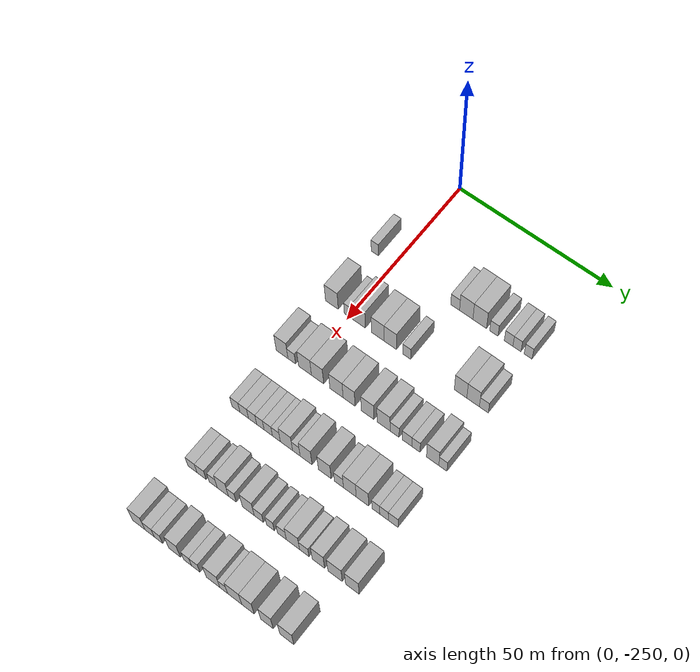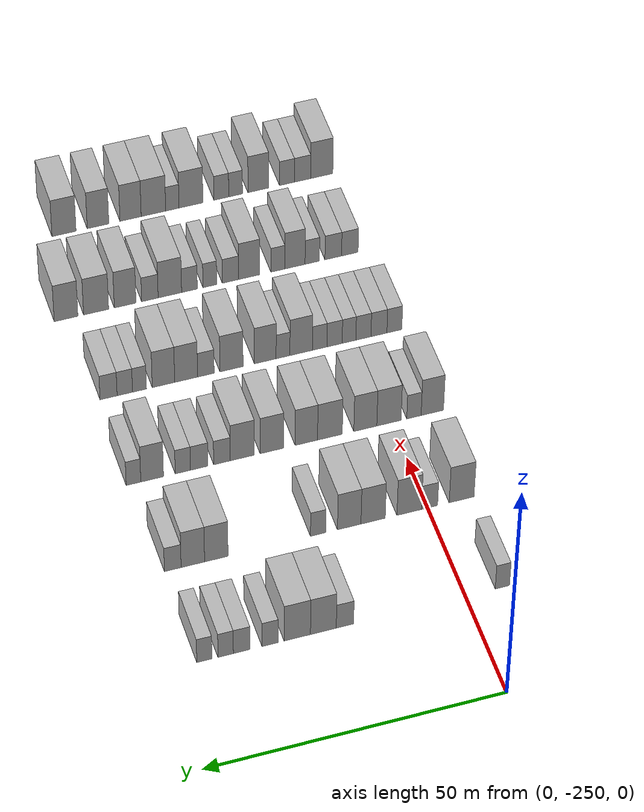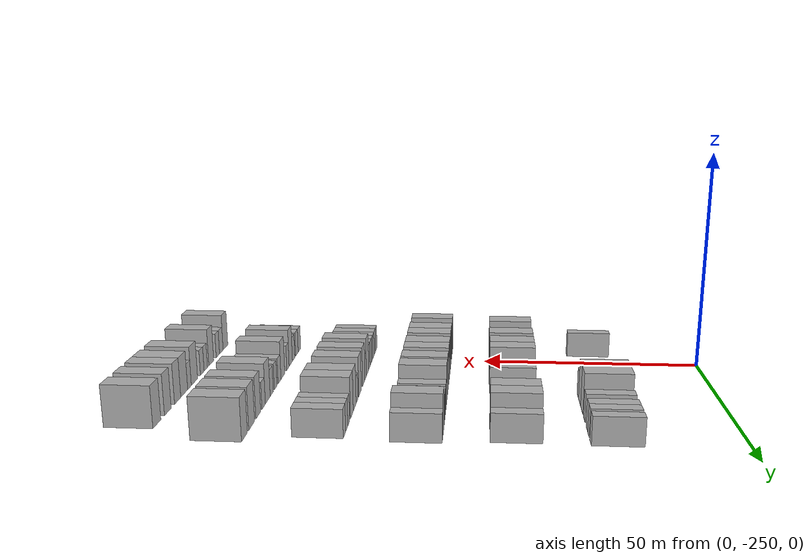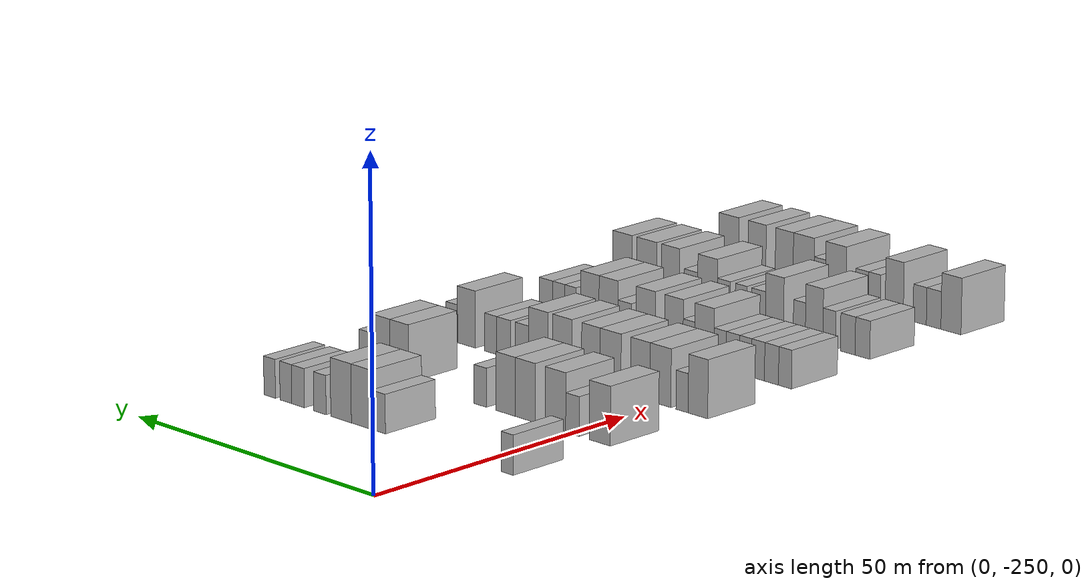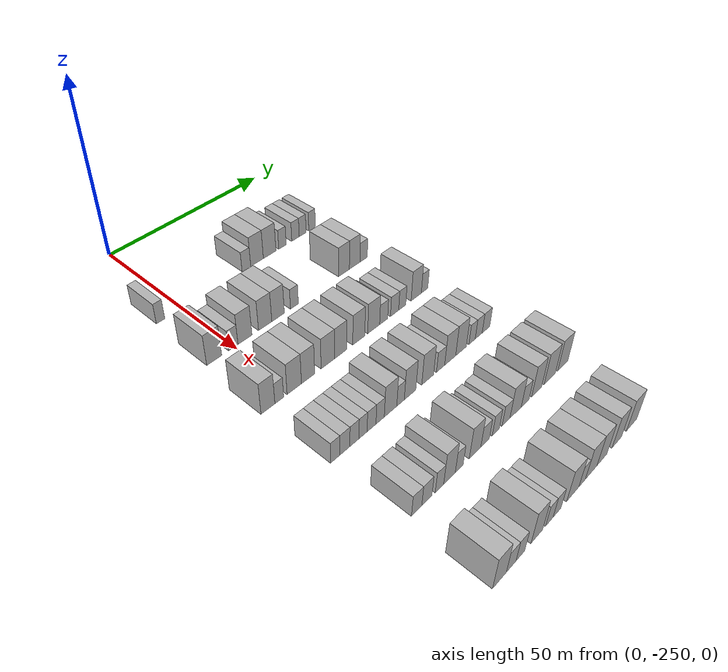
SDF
<sdf version="1.6">
 <world name="default">
  <model name="building_24">
   <static>1</static>
   <pose>25.0000 -256.2134 0 0.000000 0.000000 0.000000</pose>
   <link name="link">
    <pose>0 0 3.00 0 0 0</pose>
    <collision name="collision"><geometry><box><size>10.0000 2.4297 6.0000</size></box></geometry></collision>
    <visual name="visual">
     <cast_shadows>0</cast_shadows>
     <geometry><box><size>10.0000 2.4297 6.0000</size></box></geometry>
     <material>
      <script>
       <uri>model://HANNAS_wall/materials/scripts</uri>
       <uri>model://HANNAS_wall/materials/textures</uri>
       <name>vrc/HANNAS_wall</name>
      </script>
     </material>
    </visual>
   </link>
  </model>
  <model name="building_25">
   <static>1</static>
   <pose>25.0000 -229.6498 0 0.000000 0.000000 0.000000</pose>
   <link name="link">
    <pose>0 0 3.00 0 0 0</pose>
    <collision name="collision"><geometry><box><size>10.0000 2.8992 6.0000</size></box></geometry></collision>
    <visual name="visual">
     <cast_shadows>0</cast_shadows>
     <geometry><box><size>10.0000 2.8992 6.0000</size></box></geometry>
     <material>
      <script>
       <uri>model://HANNAS_wall/materials/scripts</uri>
       <uri>model://HANNAS_wall/materials/textures</uri>
       <name>vrc/HANNAS_wall</name>
      </script>
     </material>
    </visual>
   </link>
  </model>
  <model name="building_26">
   <static>1</static>
   <pose>25.0000 -226.0453 0 0.000000 0.000000 0.000000</pose>
   <link name="link">
    <pose>0 0 4.50 0 0 0</pose>
    <collision name="collision"><geometry><box><size>10.0000 4.3099 9.0000</size></box></geometry></collision>
    <visual name="visual">
     <cast_shadows>0</cast_shadows>
     <geometry><box><size>10.0000 4.3099 9.0000</size></box></geometry>
     <material>
      <script>
       <uri>model://HANNAS_wall/materials/scripts</uri>
       <uri>model://HANNAS_wall/materials/textures</uri>
       <name>vrc/HANNAS_wall</name>
      </script>
     </material>
    </visual>
   </link>
  </model>
  <model name="building_27">
   <static>1</static>
   <pose>25.0000 -221.6928 0 0.000000 0.000000 0.000000</pose>
   <link name="link">
    <pose>0 0 4.50 0 0 0</pose>
    <collision name="collision"><geometry><box><size>10.0000 4.3951 9.0000</size></box></geometry></collision>
    <visual name="visual">
     <cast_shadows>0</cast_shadows>
     <geometry><box><size>10.0000 4.3951 9.0000</size></box></geometry>
     <material>
      <script>
       <uri>model://HANNAS_wall/materials/scripts</uri>
       <uri>model://HANNAS_wall/materials/textures</uri>
       <name>vrc/HANNAS_wall</name>
      </script>
     </material>
    </visual>
   </link>
  </model>
  <model name="building_28">
   <static>1</static>
   <pose>25.0000 -217.1620 0 0.000000 0.000000 0.000000</pose>
   <link name="link">
    <pose>0 0 3.00 0 0 0</pose>
    <collision name="collision"><geometry><box><size>10.0000 2.6665 6.0000</size></box></geometry></collision>
    <visual name="visual">
     <cast_shadows>0</cast_shadows>
     <geometry><box><size>10.0000 2.6665 6.0000</size></box></geometry>
     <material>
      <script>
       <uri>model://HANNAS_wall/materials/scripts</uri>
       <uri>model://HANNAS_wall/materials/textures</uri>
       <name>vrc/HANNAS_wall</name>
      </script>
     </material>
    </visual>
   </link>
  </model>
  <model name="building_29">
   <static>1</static>
   <pose>25.0000 -212.4544 0 0.000000 0.000000 0.000000</pose>
   <link name="link">
    <pose>0 0 3.00 0 0 0</pose>
    <collision name="collision"><geometry><box><size>10.0000 2.7485 6.0000</size></box></geometry></collision>
    <visual name="visual">
     <cast_shadows>0</cast_shadows>
     <geometry><box><size>10.0000 2.7485 6.0000</size></box></geometry>
     <material>
      <script>
       <uri>model://HANNAS_wall/materials/scripts</uri>
       <uri>model://HANNAS_wall/materials/textures</uri>
       <name>vrc/HANNAS_wall</name>
      </script>
     </material>
    </visual>
   </link>
  </model>
  <model name="building_30">
   <static>1</static>
   <pose>25.0000 -209.8018 0 0.000000 0.000000 0.000000</pose>
   <link name="link">
    <pose>0 0 3.00 0 0 0</pose>
    <collision name="collision"><geometry><box><size>10.0000 2.5568 6.0000</size></box></geometry></collision>
    <visual name="visual">
     <cast_shadows>0</cast_shadows>
     <geometry><box><size>10.0000 2.5568 6.0000</size></box></geometry>
     <material>
      <script>
       <uri>model://HANNAS_wall/materials/scripts</uri>
       <uri>model://HANNAS_wall/materials/textures</uri>
       <name>vrc/HANNAS_wall</name>
      </script>
     </material>
    </visual>
   </link>
  </model>
  <model name="building_31">
   <static>1</static>
   <pose>25.0000 -206.2755 0 0.000000 0.000000 0.000000</pose>
   <link name="link">
    <pose>0 0 3.00 0 0 0</pose>
    <collision name="collision"><geometry><box><size>10.0000 2.4958 6.0000</size></box></geometry></collision>
    <visual name="visual">
     <cast_shadows>0</cast_shadows>
     <geometry><box><size>10.0000 2.4958 6.0000</size></box></geometry>
     <material>
      <script>
       <uri>model://HANNAS_wall/materials/scripts</uri>
       <uri>model://HANNAS_wall/materials/textures</uri>
       <name>vrc/HANNAS_wall</name>
      </script>
     </material>
    </visual>
   </link>
  </model>
  <model name="building_194">
   <static>1</static>
   <pose>44.0000 -255.7897 0 0.000000 0.000000 0.000000</pose>
   <link name="link">
    <pose>0 0 4.50 0 0 0</pose>
    <collision name="collision"><geometry><box><size>10.0000 4.2821 9.0000</size></box></geometry></collision>
    <visual name="visual">
     <cast_shadows>0</cast_shadows>
     <geometry><box><size>10.0000 4.2821 9.0000</size></box></geometry>
     <material>
      <script>
       <uri>model://HANNAS_wall/materials/scripts</uri>
       <uri>model://HANNAS_wall/materials/textures</uri>
       <name>vrc/HANNAS_wall</name>
      </script>
     </material>
    </visual>
   </link>
  </model>
  <model name="building_195">
   <static>1</static>
   <pose>44.0000 -250.2614 0 0.000000 0.000000 0.000000</pose>
   <link name="link">
    <pose>0 0 3.00 0 0 0</pose>
    <collision name="collision"><geometry><box><size>10.0000 2.7745 6.0000</size></box></geometry></collision>
    <visual name="visual">
     <cast_shadows>0</cast_shadows>
     <geometry><box><size>10.0000 2.7745 6.0000</size></box></geometry>
     <material>
      <script>
       <uri>model://HANNAS_wall/materials/scripts</uri>
       <uri>model://HANNAS_wall/materials/textures</uri>
       <name>vrc/HANNAS_wall</name>
      </script>
     </material>
    </visual>
   </link>
  </model>
  <model name="building_196">
   <static>1</static>
   <pose>44.0000 -246.7640 0 0.000000 0.000000 0.000000</pose>
   <link name="link">
    <pose>0 0 4.50 0 0 0</pose>
    <collision name="collision"><geometry><box><size>10.0000 4.2204 9.0000</size></box></geometry></collision>
    <visual name="visual">
     <cast_shadows>0</cast_shadows>
     <geometry><box><size>10.0000 4.2204 9.0000</size></box></geometry>
     <material>
      <script>
       <uri>model://HANNAS_wall/materials/scripts</uri>
       <uri>model://HANNAS_wall/materials/textures</uri>
       <name>vrc/HANNAS_wall</name>
      </script>
     </material>
    </visual>
   </link>
  </model>
  <model name="building_197">
   <static>1</static>
   <pose>44.0000 -240.5757 0 0.000000 0.000000 0.000000</pose>
   <link name="link">
    <pose>0 0 4.50 0 0 0</pose>
    <collision name="collision"><geometry><box><size>10.0000 4.1562 9.0000</size></box></geometry></collision>
    <visual name="visual">
     <cast_shadows>0</cast_shadows>
     <geometry><box><size>10.0000 4.1562 9.0000</size></box></geometry>
     <material>
      <script>
       <uri>model://HANNAS_wall/materials/scripts</uri>
       <uri>model://HANNAS_wall/materials/textures</uri>
       <name>vrc/HANNAS_wall</name>
      </script>
     </material>
    </visual>
   </link>
  </model>
  <model name="building_198">
   <static>1</static>
   <pose>44.0000 -236.4889 0 0.000000 0.000000 0.000000</pose>
   <link name="link">
    <pose>0 0 4.50 0 0 0</pose>
    <collision name="collision"><geometry><box><size>10.0000 4.0174 9.0000</size></box></geometry></collision>
    <visual name="visual">
     <cast_shadows>0</cast_shadows>
     <geometry><box><size>10.0000 4.0174 9.0000</size></box></geometry>
     <material>
      <script>
       <uri>model://HANNAS_wall/materials/scripts</uri>
       <uri>model://HANNAS_wall/materials/textures</uri>
       <name>vrc/HANNAS_wall</name>
      </script>
     </material>
    </visual>
   </link>
  </model>
  <model name="building_199">
   <static>1</static>
   <pose>44.0000 -231.1787 0 0.000000 0.000000 0.000000</pose>
   <link name="link">
    <pose>0 0 3.00 0 0 0</pose>
    <collision name="collision"><geometry><box><size>10.0000 2.6030 6.0000</size></box></geometry></collision>
    <visual name="visual">
     <cast_shadows>0</cast_shadows>
     <geometry><box><size>10.0000 2.6030 6.0000</size></box></geometry>
     <material>
      <script>
       <uri>model://HANNAS_wall/materials/scripts</uri>
       <uri>model://HANNAS_wall/materials/textures</uri>
       <name>vrc/HANNAS_wall</name>
      </script>
     </material>
    </visual>
   </link>
  </model>
  <model name="building_200">
   <static>1</static>
   <pose>44.0000 -213.9436 0 0.000000 0.000000 0.000000</pose>
   <link name="link">
    <pose>0 0 4.50 0 0 0</pose>
    <collision name="collision"><geometry><box><size>10.0000 3.9558 9.0000</size></box></geometry></collision>
    <visual name="visual">
     <cast_shadows>0</cast_shadows>
     <geometry><box><size>10.0000 3.9558 9.0000</size></box></geometry>
     <material>
      <script>
       <uri>model://HANNAS_wall/materials/scripts</uri>
       <uri>model://HANNAS_wall/materials/textures</uri>
       <name>vrc/HANNAS_wall</name>
      </script>
     </material>
    </visual>
   </link>
  </model>
  <model name="building_201">
   <static>1</static>
   <pose>44.0000 -209.9907 0 0.000000 0.000000 0.000000</pose>
   <link name="link">
    <pose>0 0 4.50 0 0 0</pose>
    <collision name="collision"><geometry><box><size>10.0000 3.9500 9.0000</size></box></geometry></collision>
    <visual name="visual">
     <cast_shadows>0</cast_shadows>
     <geometry><box><size>10.0000 3.9500 9.0000</size></box></geometry>
     <material>
      <script>
       <uri>model://HANNAS_wall/materials/scripts</uri>
       <uri>model://HANNAS_wall/materials/textures</uri>
       <name>vrc/HANNAS_wall</name>
      </script>
     </material>
    </visual>
   </link>
  </model>
  <model name="building_202">
   <static>1</static>
   <pose>44.0000 -206.6152 0 0.000000 0.000000 0.000000</pose>
   <link name="link">
    <pose>0 0 3.00 0 0 0</pose>
    <collision name="collision"><geometry><box><size>10.0000 2.8011 6.0000</size></box></geometry></collision>
    <visual name="visual">
     <cast_shadows>0</cast_shadows>
     <geometry><box><size>10.0000 2.8011 6.0000</size></box></geometry>
     <material>
      <script>
       <uri>model://HANNAS_wall/materials/scripts</uri>
       <uri>model://HANNAS_wall/materials/textures</uri>
       <name>vrc/HANNAS_wall</name>
      </script>
     </material>
    </visual>
   </link>
  </model>
  <model name="building_353">
   <static>1</static>
   <pose>63.0000 -257.1352 0 0.000000 0.000000 0.000000</pose>
   <link name="link">
    <pose>0 0 4.50 0 0 0</pose>
    <collision name="collision"><geometry><box><size>10.0000 3.9221 9.0000</size></box></geometry></collision>
    <visual name="visual">
     <cast_shadows>0</cast_shadows>
     <geometry><box><size>10.0000 3.9221 9.0000</size></box></geometry>
     <material>
      <script>
       <uri>model://HANNAS_wall/materials/scripts</uri>
       <uri>model://HANNAS_wall/materials/textures</uri>
       <name>vrc/HANNAS_wall</name>
      </script>
     </material>
    </visual>
   </link>
  </model>
  <model name="building_354">
   <static>1</static>
   <pose>63.0000 -253.9160 0 0.000000 0.000000 0.000000</pose>
   <link name="link">
    <pose>0 0 3.00 0 0 0</pose>
    <collision name="collision"><geometry><box><size>10.0000 2.5163 6.0000</size></box></geometry></collision>
    <visual name="visual">
     <cast_shadows>0</cast_shadows>
     <geometry><box><size>10.0000 2.5163 6.0000</size></box></geometry>
     <material>
      <script>
       <uri>model://HANNAS_wall/materials/scripts</uri>
       <uri>model://HANNAS_wall/materials/textures</uri>
       <name>vrc/HANNAS_wall</name>
      </script>
     </material>
    </visual>
   </link>
  </model>
  <model name="building_355">
   <static>1</static>
   <pose>63.0000 -249.5394 0 0.000000 0.000000 0.000000</pose>
   <link name="link">
    <pose>0 0 4.50 0 0 0</pose>
    <collision name="collision"><geometry><box><size>10.0000 4.2369 9.0000</size></box></geometry></collision>
    <visual name="visual">
     <cast_shadows>0</cast_shadows>
     <geometry><box><size>10.0000 4.2369 9.0000</size></box></geometry>
     <material>
      <script>
       <uri>model://HANNAS_wall/materials/scripts</uri>
       <uri>model://HANNAS_wall/materials/textures</uri>
       <name>vrc/HANNAS_wall</name>
      </script>
     </material>
    </visual>
   </link>
  </model>
  <model name="building_356">
   <static>1</static>
   <pose>63.0000 -245.4155 0 0.000000 0.000000 0.000000</pose>
   <link name="link">
    <pose>0 0 4.50 0 0 0</pose>
    <collision name="collision"><geometry><box><size>10.0000 4.0108 9.0000</size></box></geometry></collision>
    <visual name="visual">
     <cast_shadows>0</cast_shadows>
     <geometry><box><size>10.0000 4.0108 9.0000</size></box></geometry>
     <material>
      <script>
       <uri>model://HANNAS_wall/materials/scripts</uri>
       <uri>model://HANNAS_wall/materials/textures</uri>
       <name>vrc/HANNAS_wall</name>
      </script>
     </material>
    </visual>
   </link>
  </model>
  <model name="building_357">
   <static>1</static>
   <pose>63.0000 -239.2579 0 0.000000 0.000000 0.000000</pose>
   <link name="link">
    <pose>0 0 4.50 0 0 0</pose>
    <collision name="collision"><geometry><box><size>10.0000 4.3044 9.0000</size></box></geometry></collision>
    <visual name="visual">
     <cast_shadows>0</cast_shadows>
     <geometry><box><size>10.0000 4.3044 9.0000</size></box></geometry>
     <material>
      <script>
       <uri>model://HANNAS_wall/materials/scripts</uri>
       <uri>model://HANNAS_wall/materials/textures</uri>
       <name>vrc/HANNAS_wall</name>
      </script>
     </material>
    </visual>
   </link>
  </model>
  <model name="building_358">
   <static>1</static>
   <pose>63.0000 -235.1650 0 0.000000 0.000000 0.000000</pose>
   <link name="link">
    <pose>0 0 4.50 0 0 0</pose>
    <collision name="collision"><geometry><box><size>10.0000 3.8814 9.0000</size></box></geometry></collision>
    <visual name="visual">
     <cast_shadows>0</cast_shadows>
     <geometry><box><size>10.0000 3.8814 9.0000</size></box></geometry>
     <material>
      <script>
       <uri>model://HANNAS_wall/materials/scripts</uri>
       <uri>model://HANNAS_wall/materials/textures</uri>
       <name>vrc/HANNAS_wall</name>
      </script>
     </material>
    </visual>
   </link>
  </model>
  <model name="building_359">
   <static>1</static>
   <pose>63.0000 -229.1995 0 0.000000 0.000000 0.000000</pose>
   <link name="link">
    <pose>0 0 4.50 0 0 0</pose>
    <collision name="collision"><geometry><box><size>10.0000 4.0497 9.0000</size></box></geometry></collision>
    <visual name="visual">
     <cast_shadows>0</cast_shadows>
     <geometry><box><size>10.0000 4.0497 9.0000</size></box></geometry>
     <material>
      <script>
       <uri>model://HANNAS_wall/materials/scripts</uri>
       <uri>model://HANNAS_wall/materials/textures</uri>
       <name>vrc/HANNAS_wall</name>
      </script>
     </material>
    </visual>
   </link>
  </model>
  <model name="building_360">
   <static>1</static>
   <pose>63.0000 -224.1062 0 0.000000 0.000000 0.000000</pose>
   <link name="link">
    <pose>0 0 4.50 0 0 0</pose>
    <collision name="collision"><geometry><box><size>10.0000 4.1368 9.0000</size></box></geometry></collision>
    <visual name="visual">
     <cast_shadows>0</cast_shadows>
     <geometry><box><size>10.0000 4.1368 9.0000</size></box></geometry>
     <material>
      <script>
       <uri>model://HANNAS_wall/materials/scripts</uri>
       <uri>model://HANNAS_wall/materials/textures</uri>
       <name>vrc/HANNAS_wall</name>
      </script>
     </material>
    </visual>
   </link>
  </model>
  <model name="building_361">
   <static>1</static>
   <pose>63.0000 -220.6073 0 0.000000 0.000000 0.000000</pose>
   <link name="link">
    <pose>0 0 3.00 0 0 0</pose>
    <collision name="collision"><geometry><box><size>10.0000 2.8610 6.0000</size></box></geometry></collision>
    <visual name="visual">
     <cast_shadows>0</cast_shadows>
     <geometry><box><size>10.0000 2.8610 6.0000</size></box></geometry>
     <material>
      <script>
       <uri>model://HANNAS_wall/materials/scripts</uri>
       <uri>model://HANNAS_wall/materials/textures</uri>
       <name>vrc/HANNAS_wall</name>
      </script>
     </material>
    </visual>
   </link>
  </model>
  <model name="building_362">
   <static>1</static>
   <pose>63.0000 -216.6853 0 0.000000 0.000000 0.000000</pose>
   <link name="link">
    <pose>0 0 3.00 0 0 0</pose>
    <collision name="collision"><geometry><box><size>10.0000 2.9830 6.0000</size></box></geometry></collision>
    <visual name="visual">
     <cast_shadows>0</cast_shadows>
     <geometry><box><size>10.0000 2.9830 6.0000</size></box></geometry>
     <material>
      <script>
       <uri>model://HANNAS_wall/materials/scripts</uri>
       <uri>model://HANNAS_wall/materials/textures</uri>
       <name>vrc/HANNAS_wall</name>
      </script>
     </material>
    </visual>
   </link>
  </model>
  <model name="building_363">
   <static>1</static>
   <pose>63.0000 -213.8888 0 0.000000 0.000000 0.000000</pose>
   <link name="link">
    <pose>0 0 3.00 0 0 0</pose>
    <collision name="collision"><geometry><box><size>10.0000 2.6099 6.0000</size></box></geometry></collision>
    <visual name="visual">
     <cast_shadows>0</cast_shadows>
     <geometry><box><size>10.0000 2.6099 6.0000</size></box></geometry>
     <material>
      <script>
       <uri>model://HANNAS_wall/materials/scripts</uri>
       <uri>model://HANNAS_wall/materials/textures</uri>
       <name>vrc/HANNAS_wall</name>
      </script>
     </material>
    </visual>
   </link>
  </model>
  <model name="building_364">
   <static>1</static>
   <pose>63.0000 -208.6445 0 0.000000 0.000000 0.000000</pose>
   <link name="link">
    <pose>0 0 4.50 0 0 0</pose>
    <collision name="collision"><geometry><box><size>10.0000 3.8786 9.0000</size></box></geometry></collision>
    <visual name="visual">
     <cast_shadows>0</cast_shadows>
     <geometry><box><size>10.0000 3.8786 9.0000</size></box></geometry>
     <material>
      <script>
       <uri>model://HANNAS_wall/materials/scripts</uri>
       <uri>model://HANNAS_wall/materials/textures</uri>
       <name>vrc/HANNAS_wall</name>
      </script>
     </material>
    </visual>
   </link>
  </model>
  <model name="building_365">
   <static>1</static>
   <pose>63.0000 -205.4562 0 0.000000 0.000000 0.000000</pose>
   <link name="link">
    <pose>0 0 3.00 0 0 0</pose>
    <collision name="collision"><geometry><box><size>10.0000 2.4982 6.0000</size></box></geometry></collision>
    <visual name="visual">
     <cast_shadows>0</cast_shadows>
     <geometry><box><size>10.0000 2.4982 6.0000</size></box></geometry>
     <material>
      <script>
       <uri>model://HANNAS_wall/materials/scripts</uri>
       <uri>model://HANNAS_wall/materials/textures</uri>
       <name>vrc/HANNAS_wall</name>
      </script>
     </material>
    </visual>
   </link>
  </model>
  <model name="building_529">
   <static>1</static>
   <pose>82.0000 -256.7648 0 0.000000 0.000000 0.000000</pose>
   <link name="link">
    <pose>0 0 3.00 0 0 0</pose>
    <collision name="collision"><geometry><box><size>10.0000 2.6462 6.0000</size></box></geometry></collision>
    <visual name="visual">
     <cast_shadows>0</cast_shadows>
     <geometry><box><size>10.0000 2.6462 6.0000</size></box></geometry>
     <material>
      <script>
       <uri>model://HANNAS_wall/materials/scripts</uri>
       <uri>model://HANNAS_wall/materials/textures</uri>
       <name>vrc/HANNAS_wall</name>
      </script>
     </material>
    </visual>
   </link>
  </model>
  <model name="building_530">
   <static>1</static>
   <pose>82.0000 -254.0174 0 0.000000 0.000000 0.000000</pose>
   <link name="link">
    <pose>0 0 3.00 0 0 0</pose>
    <collision name="collision"><geometry><box><size>10.0000 2.8485 6.0000</size></box></geometry></collision>
    <visual name="visual">
     <cast_shadows>0</cast_shadows>
     <geometry><box><size>10.0000 2.8485 6.0000</size></box></geometry>
     <material>
      <script>
       <uri>model://HANNAS_wall/materials/scripts</uri>
       <uri>model://HANNAS_wall/materials/textures</uri>
       <name>vrc/HANNAS_wall</name>
      </script>
     </material>
    </visual>
   </link>
  </model>
  <model name="building_531">
   <static>1</static>
   <pose>82.0000 -251.2558 0 0.000000 0.000000 0.000000</pose>
   <link name="link">
    <pose>0 0 3.00 0 0 0</pose>
    <collision name="collision"><geometry><box><size>10.0000 2.6749 6.0000</size></box></geometry></collision>
    <visual name="visual">
     <cast_shadows>0</cast_shadows>
     <geometry><box><size>10.0000 2.6749 6.0000</size></box></geometry>
     <material>
      <script>
       <uri>model://HANNAS_wall/materials/scripts</uri>
       <uri>model://HANNAS_wall/materials/textures</uri>
       <name>vrc/HANNAS_wall</name>
      </script>
     </material>
    </visual>
   </link>
  </model>
  <model name="building_532">
   <static>1</static>
   <pose>82.0000 -248.7010 0 0.000000 0.000000 0.000000</pose>
   <link name="link">
    <pose>0 0 3.00 0 0 0</pose>
    <collision name="collision"><geometry><box><size>10.0000 2.4346 6.0000</size></box></geometry></collision>
    <visual name="visual">
     <cast_shadows>0</cast_shadows>
     <geometry><box><size>10.0000 2.4346 6.0000</size></box></geometry>
     <material>
      <script>
       <uri>model://HANNAS_wall/materials/scripts</uri>
       <uri>model://HANNAS_wall/materials/textures</uri>
       <name>vrc/HANNAS_wall</name>
      </script>
     </material>
    </visual>
   </link>
  </model>
  <model name="building_533">
   <static>1</static>
   <pose>82.0000 -246.1315 0 0.000000 0.000000 0.000000</pose>
   <link name="link">
    <pose>0 0 3.00 0 0 0</pose>
    <collision name="collision"><geometry><box><size>10.0000 2.7043 6.0000</size></box></geometry></collision>
    <visual name="visual">
     <cast_shadows>0</cast_shadows>
     <geometry><box><size>10.0000 2.7043 6.0000</size></box></geometry>
     <material>
      <script>
       <uri>model://HANNAS_wall/materials/scripts</uri>
       <uri>model://HANNAS_wall/materials/textures</uri>
       <name>vrc/HANNAS_wall</name>
      </script>
     </material>
    </visual>
   </link>
  </model>
  <model name="building_534">
   <static>1</static>
   <pose>82.0000 -243.4946 0 0.000000 0.000000 0.000000</pose>
   <link name="link">
    <pose>0 0 3.00 0 0 0</pose>
    <collision name="collision"><geometry><box><size>10.0000 2.5695 6.0000</size></box></geometry></collision>
    <visual name="visual">
     <cast_shadows>0</cast_shadows>
     <geometry><box><size>10.0000 2.5695 6.0000</size></box></geometry>
     <material>
      <script>
       <uri>model://HANNAS_wall/materials/scripts</uri>
       <uri>model://HANNAS_wall/materials/textures</uri>
       <name>vrc/HANNAS_wall</name>
      </script>
     </material>
    </visual>
   </link>
  </model>
  <model name="building_535">
   <static>1</static>
   <pose>82.0000 -240.2291 0 0.000000 0.000000 0.000000</pose>
   <link name="link">
    <pose>0 0 4.50 0 0 0</pose>
    <collision name="collision"><geometry><box><size>10.0000 3.9615 9.0000</size></box></geometry></collision>
    <visual name="visual">
     <cast_shadows>0</cast_shadows>
     <geometry><box><size>10.0000 3.9615 9.0000</size></box></geometry>
     <material>
      <script>
       <uri>model://HANNAS_wall/materials/scripts</uri>
       <uri>model://HANNAS_wall/materials/textures</uri>
       <name>vrc/HANNAS_wall</name>
      </script>
     </material>
    </visual>
   </link>
  </model>
  <model name="building_536">
   <static>1</static>
   <pose>82.0000 -237.0342 0 0.000000 0.000000 0.000000</pose>
   <link name="link">
    <pose>0 0 3.00 0 0 0</pose>
    <collision name="collision"><geometry><box><size>10.0000 2.4283 6.0000</size></box></geometry></collision>
    <visual name="visual">
     <cast_shadows>0</cast_shadows>
     <geometry><box><size>10.0000 2.4283 6.0000</size></box></geometry>
     <material>
      <script>
       <uri>model://HANNAS_wall/materials/scripts</uri>
       <uri>model://HANNAS_wall/materials/textures</uri>
       <name>vrc/HANNAS_wall</name>
      </script>
     </material>
    </visual>
   </link>
  </model>
  <model name="building_537">
   <static>1</static>
   <pose>82.0000 -233.9135 0 0.000000 0.000000 0.000000</pose>
   <link name="link">
    <pose>0 0 4.50 0 0 0</pose>
    <collision name="collision"><geometry><box><size>10.0000 3.8131 9.0000</size></box></geometry></collision>
    <visual name="visual">
     <cast_shadows>0</cast_shadows>
     <geometry><box><size>10.0000 3.8131 9.0000</size></box></geometry>
     <material>
      <script>
       <uri>model://HANNAS_wall/materials/scripts</uri>
       <uri>model://HANNAS_wall/materials/textures</uri>
       <name>vrc/HANNAS_wall</name>
      </script>
     </material>
    </visual>
   </link>
  </model>
  <model name="building_538">
   <static>1</static>
   <pose>82.0000 -227.9728 0 0.000000 0.000000 0.000000</pose>
   <link name="link">
    <pose>0 0 4.50 0 0 0</pose>
    <collision name="collision"><geometry><box><size>10.0000 4.0682 9.0000</size></box></geometry></collision>
    <visual name="visual">
     <cast_shadows>0</cast_shadows>
     <geometry><box><size>10.0000 4.0682 9.0000</size></box></geometry>
     <material>
      <script>
       <uri>model://HANNAS_wall/materials/scripts</uri>
       <uri>model://HANNAS_wall/materials/textures</uri>
       <name>vrc/HANNAS_wall</name>
      </script>
     </material>
    </visual>
   </link>
  </model>
  <model name="building_539">
   <static>1</static>
   <pose>82.0000 -223.4915 0 0.000000 0.000000 0.000000</pose>
   <link name="link">
    <pose>0 0 3.00 0 0 0</pose>
    <collision name="collision"><geometry><box><size>10.0000 2.8944 6.0000</size></box></geometry></collision>
    <visual name="visual">
     <cast_shadows>0</cast_shadows>
     <geometry><box><size>10.0000 2.8944 6.0000</size></box></geometry>
     <material>
      <script>
       <uri>model://HANNAS_wall/materials/scripts</uri>
       <uri>model://HANNAS_wall/materials/textures</uri>
       <name>vrc/HANNAS_wall</name>
      </script>
     </material>
    </visual>
   </link>
  </model>
  <model name="building_540">
   <static>1</static>
   <pose>82.0000 -220.0459 0 0.000000 0.000000 0.000000</pose>
   <link name="link">
    <pose>0 0 4.50 0 0 0</pose>
    <collision name="collision"><geometry><box><size>10.0000 3.9967 9.0000</size></box></geometry></collision>
    <visual name="visual">
     <cast_shadows>0</cast_shadows>
     <geometry><box><size>10.0000 3.9967 9.0000</size></box></geometry>
     <material>
      <script>
       <uri>model://HANNAS_wall/materials/scripts</uri>
       <uri>model://HANNAS_wall/materials/textures</uri>
       <name>vrc/HANNAS_wall</name>
      </script>
     </material>
    </visual>
   </link>
  </model>
  <model name="building_541">
   <static>1</static>
   <pose>82.0000 -216.0922 0 0.000000 0.000000 0.000000</pose>
   <link name="link">
    <pose>0 0 4.50 0 0 0</pose>
    <collision name="collision"><geometry><box><size>10.0000 3.9107 9.0000</size></box></geometry></collision>
    <visual name="visual">
     <cast_shadows>0</cast_shadows>
     <geometry><box><size>10.0000 3.9107 9.0000</size></box></geometry>
     <material>
      <script>
       <uri>model://HANNAS_wall/materials/scripts</uri>
       <uri>model://HANNAS_wall/materials/textures</uri>
       <name>vrc/HANNAS_wall</name>
      </script>
     </material>
    </visual>
   </link>
  </model>
  <model name="building_542">
   <static>1</static>
   <pose>82.0000 -211.9238 0 0.000000 0.000000 0.000000</pose>
   <link name="link">
    <pose>0 0 3.00 0 0 0</pose>
    <collision name="collision"><geometry><box><size>10.0000 2.4261 6.0000</size></box></geometry></collision>
    <visual name="visual">
     <cast_shadows>0</cast_shadows>
     <geometry><box><size>10.0000 2.4261 6.0000</size></box></geometry>
     <material>
      <script>
       <uri>model://HANNAS_wall/materials/scripts</uri>
       <uri>model://HANNAS_wall/materials/textures</uri>
       <name>vrc/HANNAS_wall</name>
      </script>
     </material>
    </visual>
   </link>
  </model>
  <model name="building_543">
   <static>1</static>
   <pose>82.0000 -209.3722 0 0.000000 0.000000 0.000000</pose>
   <link name="link">
    <pose>0 0 3.00 0 0 0</pose>
    <collision name="collision"><geometry><box><size>10.0000 2.6771 6.0000</size></box></geometry></collision>
    <visual name="visual">
     <cast_shadows>0</cast_shadows>
     <geometry><box><size>10.0000 2.6771 6.0000</size></box></geometry>
     <material>
      <script>
       <uri>model://HANNAS_wall/materials/scripts</uri>
       <uri>model://HANNAS_wall/materials/textures</uri>
       <name>vrc/HANNAS_wall</name>
      </script>
     </material>
    </visual>
   </link>
  </model>
  <model name="building_544">
   <static>1</static>
   <pose>82.0000 -206.5516 0 0.000000 0.000000 0.000000</pose>
   <link name="link">
    <pose>0 0 3.00 0 0 0</pose>
    <collision name="collision"><geometry><box><size>10.0000 2.9642 6.0000</size></box></geometry></collision>
    <visual name="visual">
     <cast_shadows>0</cast_shadows>
     <geometry><box><size>10.0000 2.9642 6.0000</size></box></geometry>
     <material>
      <script>
       <uri>model://HANNAS_wall/materials/scripts</uri>
       <uri>model://HANNAS_wall/materials/textures</uri>
       <name>vrc/HANNAS_wall</name>
      </script>
     </material>
    </visual>
   </link>
  </model>
  <model name="building_703">
   <static>1</static>
   <pose>101.0000 -254.9681 0 0.000000 0.000000 0.000000</pose>
   <link name="link">
    <pose>0 0 3.00 0 0 0</pose>
    <collision name="collision"><geometry><box><size>10.0000 2.9876 6.0000</size></box></geometry></collision>
    <visual name="visual">
     <cast_shadows>0</cast_shadows>
     <geometry><box><size>10.0000 2.9876 6.0000</size></box></geometry>
     <material>
      <script>
       <uri>model://HANNAS_wall/materials/scripts</uri>
       <uri>model://HANNAS_wall/materials/textures</uri>
       <name>vrc/HANNAS_wall</name>
      </script>
     </material>
    </visual>
   </link>
  </model>
  <model name="building_704">
   <static>1</static>
   <pose>101.0000 -251.9760 0 0.000000 0.000000 0.000000</pose>
   <link name="link">
    <pose>0 0 3.00 0 0 0</pose>
    <collision name="collision"><geometry><box><size>10.0000 2.9964 6.0000</size></box></geometry></collision>
    <visual name="visual">
     <cast_shadows>0</cast_shadows>
     <geometry><box><size>10.0000 2.9964 6.0000</size></box></geometry>
     <material>
      <script>
       <uri>model://HANNAS_wall/materials/scripts</uri>
       <uri>model://HANNAS_wall/materials/textures</uri>
       <name>vrc/HANNAS_wall</name>
      </script>
     </material>
    </visual>
   </link>
  </model>
  <model name="building_705">
   <static>1</static>
   <pose>101.0000 -248.1879 0 0.000000 0.000000 0.000000</pose>
   <link name="link">
    <pose>0 0 3.00 0 0 0</pose>
    <collision name="collision"><geometry><box><size>10.0000 2.5799 6.0000</size></box></geometry></collision>
    <visual name="visual">
     <cast_shadows>0</cast_shadows>
     <geometry><box><size>10.0000 2.5799 6.0000</size></box></geometry>
     <material>
      <script>
       <uri>model://HANNAS_wall/materials/scripts</uri>
       <uri>model://HANNAS_wall/materials/textures</uri>
       <name>vrc/HANNAS_wall</name>
      </script>
     </material>
    </visual>
   </link>
  </model>
  <model name="building_706">
   <static>1</static>
   <pose>101.0000 -245.0832 0 0.000000 0.000000 0.000000</pose>
   <link name="link">
    <pose>0 0 4.50 0 0 0</pose>
    <collision name="collision"><geometry><box><size>10.0000 3.6296 9.0000</size></box></geometry></collision>
    <visual name="visual">
     <cast_shadows>0</cast_shadows>
     <geometry><box><size>10.0000 3.6296 9.0000</size></box></geometry>
     <material>
      <script>
       <uri>model://HANNAS_wall/materials/scripts</uri>
       <uri>model://HANNAS_wall/materials/textures</uri>
       <name>vrc/HANNAS_wall</name>
      </script>
     </material>
    </visual>
   </link>
  </model>
  <model name="building_707">
   <static>1</static>
   <pose>101.0000 -242.0192 0 0.000000 0.000000 0.000000</pose>
   <link name="link">
    <pose>0 0 3.00 0 0 0</pose>
    <collision name="collision"><geometry><box><size>10.0000 2.4984 6.0000</size></box></geometry></collision>
    <visual name="visual">
     <cast_shadows>0</cast_shadows>
     <geometry><box><size>10.0000 2.4984 6.0000</size></box></geometry>
     <material>
      <script>
       <uri>model://HANNAS_wall/materials/scripts</uri>
       <uri>model://HANNAS_wall/materials/textures</uri>
       <name>vrc/HANNAS_wall</name>
      </script>
     </material>
    </visual>
   </link>
  </model>
  <model name="building_708">
   <static>1</static>
   <pose>101.0000 -236.8675 0 0.000000 0.000000 0.000000</pose>
   <link name="link">
    <pose>0 0 4.50 0 0 0</pose>
    <collision name="collision"><geometry><box><size>10.0000 3.8049 9.0000</size></box></geometry></collision>
    <visual name="visual">
     <cast_shadows>0</cast_shadows>
     <geometry><box><size>10.0000 3.8049 9.0000</size></box></geometry>
     <material>
      <script>
       <uri>model://HANNAS_wall/materials/scripts</uri>
       <uri>model://HANNAS_wall/materials/textures</uri>
       <name>vrc/HANNAS_wall</name>
      </script>
     </material>
    </visual>
   </link>
  </model>
  <model name="building_709">
   <static>1</static>
   <pose>101.0000 -233.5197 0 0.000000 0.000000 0.000000</pose>
   <link name="link">
    <pose>0 0 3.00 0 0 0</pose>
    <collision name="collision"><geometry><box><size>10.0000 2.8905 6.0000</size></box></geometry></collision>
    <visual name="visual">
     <cast_shadows>0</cast_shadows>
     <geometry><box><size>10.0000 2.8905 6.0000</size></box></geometry>
     <material>
      <script>
       <uri>model://HANNAS_wall/materials/scripts</uri>
       <uri>model://HANNAS_wall/materials/textures</uri>
       <name>vrc/HANNAS_wall</name>
      </script>
     </material>
    </visual>
   </link>
  </model>
  <model name="building_710">
   <static>1</static>
   <pose>101.0000 -229.8468 0 0.000000 0.000000 0.000000</pose>
   <link name="link">
    <pose>0 0 3.00 0 0 0</pose>
    <collision name="collision"><geometry><box><size>10.0000 2.4552 6.0000</size></box></geometry></collision>
    <visual name="visual">
     <cast_shadows>0</cast_shadows>
     <geometry><box><size>10.0000 2.4552 6.0000</size></box></geometry>
     <material>
      <script>
       <uri>model://HANNAS_wall/materials/scripts</uri>
       <uri>model://HANNAS_wall/materials/textures</uri>
       <name>vrc/HANNAS_wall</name>
      </script>
     </material>
    </visual>
   </link>
  </model>
  <model name="building_711">
   <static>1</static>
   <pose>101.0000 -226.2224 0 0.000000 0.000000 0.000000</pose>
   <link name="link">
    <pose>0 0 3.00 0 0 0</pose>
    <collision name="collision"><geometry><box><size>10.0000 2.7936 6.0000</size></box></geometry></collision>
    <visual name="visual">
     <cast_shadows>0</cast_shadows>
     <geometry><box><size>10.0000 2.7936 6.0000</size></box></geometry>
     <material>
      <script>
       <uri>model://HANNAS_wall/materials/scripts</uri>
       <uri>model://HANNAS_wall/materials/textures</uri>
       <name>vrc/HANNAS_wall</name>
      </script>
     </material>
    </visual>
   </link>
  </model>
  <model name="building_712">
   <static>1</static>
   <pose>101.0000 -222.7427 0 0.000000 0.000000 0.000000</pose>
   <link name="link">
    <pose>0 0 4.50 0 0 0</pose>
    <collision name="collision"><geometry><box><size>10.0000 4.1660 9.0000</size></box></geometry></collision>
    <visual name="visual">
     <cast_shadows>0</cast_shadows>
     <geometry><box><size>10.0000 4.1660 9.0000</size></box></geometry>
     <material>
      <script>
       <uri>model://HANNAS_wall/materials/scripts</uri>
       <uri>model://HANNAS_wall/materials/textures</uri>
       <name>vrc/HANNAS_wall</name>
      </script>
     </material>
    </visual>
   </link>
  </model>
  <model name="building_713">
   <static>1</static>
   <pose>101.0000 -219.1999 0 0.000000 0.000000 0.000000</pose>
   <link name="link">
    <pose>0 0 3.00 0 0 0</pose>
    <collision name="collision"><geometry><box><size>10.0000 2.9195 6.0000</size></box></geometry></collision>
    <visual name="visual">
     <cast_shadows>0</cast_shadows>
     <geometry><box><size>10.0000 2.9195 6.0000</size></box></geometry>
     <material>
      <script>
       <uri>model://HANNAS_wall/materials/scripts</uri>
       <uri>model://HANNAS_wall/materials/textures</uri>
       <name>vrc/HANNAS_wall</name>
      </script>
     </material>
    </visual>
   </link>
  </model>
  <model name="building_714">
   <static>1</static>
   <pose>101.0000 -214.8212 0 0.000000 0.000000 0.000000</pose>
   <link name="link">
    <pose>0 0 4.50 0 0 0</pose>
    <collision name="collision"><geometry><box><size>10.0000 3.8380 9.0000</size></box></geometry></collision>
    <visual name="visual">
     <cast_shadows>0</cast_shadows>
     <geometry><box><size>10.0000 3.8380 9.0000</size></box></geometry>
     <material>
      <script>
       <uri>model://HANNAS_wall/materials/scripts</uri>
       <uri>model://HANNAS_wall/materials/textures</uri>
       <name>vrc/HANNAS_wall</name>
      </script>
     </material>
    </visual>
   </link>
  </model>
  <model name="building_715">
   <static>1</static>
   <pose>101.0000 -209.6939 0 0.000000 0.000000 0.000000</pose>
   <link name="link">
    <pose>0 0 4.50 0 0 0</pose>
    <collision name="collision"><geometry><box><size>10.0000 4.4166 9.0000</size></box></geometry></collision>
    <visual name="visual">
     <cast_shadows>0</cast_shadows>
     <geometry><box><size>10.0000 4.4166 9.0000</size></box></geometry>
     <material>
      <script>
       <uri>model://HANNAS_wall/materials/scripts</uri>
       <uri>model://HANNAS_wall/materials/textures</uri>
       <name>vrc/HANNAS_wall</name>
      </script>
     </material>
    </visual>
   </link>
  </model>
  <model name="building_716">
   <static>1</static>
   <pose>101.0000 -204.4045 0 0.000000 0.000000 0.000000</pose>
   <link name="link">
    <pose>0 0 4.50 0 0 0</pose>
    <collision name="collision"><geometry><box><size>10.0000 4.1621 9.0000</size></box></geometry></collision>
    <visual name="visual">
     <cast_shadows>0</cast_shadows>
     <geometry><box><size>10.0000 4.1621 9.0000</size></box></geometry>
     <material>
      <script>
       <uri>model://HANNAS_wall/materials/scripts</uri>
       <uri>model://HANNAS_wall/materials/textures</uri>
       <name>vrc/HANNAS_wall</name>
      </script>
     </material>
    </visual>
   </link>
  </model>
  <model name="building_873">
   <static>1</static>
   <pose>120.0000 -255.9261 0 0.000000 0.000000 0.000000</pose>
   <link name="link">
    <pose>0 0 4.50 0 0 0</pose>
    <collision name="collision"><geometry><box><size>10.0000 4.0760 9.0000</size></box></geometry></collision>
    <visual name="visual">
     <cast_shadows>0</cast_shadows>
     <geometry><box><size>10.0000 4.0760 9.0000</size></box></geometry>
     <material>
      <script>
       <uri>model://HANNAS_wall/materials/scripts</uri>
       <uri>model://HANNAS_wall/materials/textures</uri>
       <name>vrc/HANNAS_wall</name>
      </script>
     </material>
    </visual>
   </link>
  </model>
  <model name="building_874">
   <static>1</static>
   <pose>120.0000 -252.4023 0 0.000000 0.000000 0.000000</pose>
   <link name="link">
    <pose>0 0 3.00 0 0 0</pose>
    <collision name="collision"><geometry><box><size>10.0000 2.9715 6.0000</size></box></geometry></collision>
    <visual name="visual">
     <cast_shadows>0</cast_shadows>
     <geometry><box><size>10.0000 2.9715 6.0000</size></box></geometry>
     <material>
      <script>
       <uri>model://HANNAS_wall/materials/scripts</uri>
       <uri>model://HANNAS_wall/materials/textures</uri>
       <name>vrc/HANNAS_wall</name>
      </script>
     </material>
    </visual>
   </link>
  </model>
  <model name="building_875">
   <static>1</static>
   <pose>120.0000 -249.5616 0 0.000000 0.000000 0.000000</pose>
   <link name="link">
    <pose>0 0 3.00 0 0 0</pose>
    <collision name="collision"><geometry><box><size>10.0000 2.7099 6.0000</size></box></geometry></collision>
    <visual name="visual">
     <cast_shadows>0</cast_shadows>
     <geometry><box><size>10.0000 2.7099 6.0000</size></box></geometry>
     <material>
      <script>
       <uri>model://HANNAS_wall/materials/scripts</uri>
       <uri>model://HANNAS_wall/materials/textures</uri>
       <name>vrc/HANNAS_wall</name>
      </script>
     </material>
    </visual>
   </link>
  </model>
  <model name="building_876">
   <static>1</static>
   <pose>120.0000 -244.3250 0 0.000000 0.000000 0.000000</pose>
   <link name="link">
    <pose>0 0 4.50 0 0 0</pose>
    <collision name="collision"><geometry><box><size>10.0000 3.7634 9.0000</size></box></geometry></collision>
    <visual name="visual">
     <cast_shadows>0</cast_shadows>
     <geometry><box><size>10.0000 3.7634 9.0000</size></box></geometry>
     <material>
      <script>
       <uri>model://HANNAS_wall/materials/scripts</uri>
       <uri>model://HANNAS_wall/materials/textures</uri>
       <name>vrc/HANNAS_wall</name>
      </script>
     </material>
    </visual>
   </link>
  </model>
  <model name="building_877">
   <static>1</static>
   <pose>120.0000 -240.1920 0 0.000000 0.000000 0.000000</pose>
   <link name="link">
    <pose>0 0 3.00 0 0 0</pose>
    <collision name="collision"><geometry><box><size>10.0000 2.5026 6.0000</size></box></geometry></collision>
    <visual name="visual">
     <cast_shadows>0</cast_shadows>
     <geometry><box><size>10.0000 2.5026 6.0000</size></box></geometry>
     <material>
      <script>
       <uri>model://HANNAS_wall/materials/scripts</uri>
       <uri>model://HANNAS_wall/materials/textures</uri>
       <name>vrc/HANNAS_wall</name>
      </script>
     </material>
    </visual>
   </link>
  </model>
  <model name="building_878">
   <static>1</static>
   <pose>120.0000 -237.5992 0 0.000000 0.000000 0.000000</pose>
   <link name="link">
    <pose>0 0 3.00 0 0 0</pose>
    <collision name="collision"><geometry><box><size>10.0000 2.6828 6.0000</size></box></geometry></collision>
    <visual name="visual">
     <cast_shadows>0</cast_shadows>
     <geometry><box><size>10.0000 2.6828 6.0000</size></box></geometry>
     <material>
      <script>
       <uri>model://HANNAS_wall/materials/scripts</uri>
       <uri>model://HANNAS_wall/materials/textures</uri>
       <name>vrc/HANNAS_wall</name>
      </script>
     </material>
    </visual>
   </link>
  </model>
  <model name="building_879">
   <static>1</static>
   <pose>120.0000 -232.0920 0 0.000000 0.000000 0.000000</pose>
   <link name="link">
    <pose>0 0 4.50 0 0 0</pose>
    <collision name="collision"><geometry><box><size>10.0000 4.3315 9.0000</size></box></geometry></collision>
    <visual name="visual">
     <cast_shadows>0</cast_shadows>
     <geometry><box><size>10.0000 4.3315 9.0000</size></box></geometry>
     <material>
      <script>
       <uri>model://HANNAS_wall/materials/scripts</uri>
       <uri>model://HANNAS_wall/materials/textures</uri>
       <name>vrc/HANNAS_wall</name>
      </script>
     </material>
    </visual>
   </link>
  </model>
  <model name="building_880">
   <static>1</static>
   <pose>120.0000 -228.7230 0 0.000000 0.000000 0.000000</pose>
   <link name="link">
    <pose>0 0 3.00 0 0 0</pose>
    <collision name="collision"><geometry><box><size>10.0000 2.4066 6.0000</size></box></geometry></collision>
    <visual name="visual">
     <cast_shadows>0</cast_shadows>
     <geometry><box><size>10.0000 2.4066 6.0000</size></box></geometry>
     <material>
      <script>
       <uri>model://HANNAS_wall/materials/scripts</uri>
       <uri>model://HANNAS_wall/materials/textures</uri>
       <name>vrc/HANNAS_wall</name>
      </script>
     </material>
    </visual>
   </link>
  </model>
  <model name="building_881">
   <static>1</static>
   <pose>120.0000 -225.3098 0 0.000000 0.000000 0.000000</pose>
   <link name="link">
    <pose>0 0 4.50 0 0 0</pose>
    <collision name="collision"><geometry><box><size>10.0000 4.4199 9.0000</size></box></geometry></collision>
    <visual name="visual">
     <cast_shadows>0</cast_shadows>
     <geometry><box><size>10.0000 4.4199 9.0000</size></box></geometry>
     <material>
      <script>
       <uri>model://HANNAS_wall/materials/scripts</uri>
       <uri>model://HANNAS_wall/materials/textures</uri>
       <name>vrc/HANNAS_wall</name>
      </script>
     </material>
    </visual>
   </link>
  </model>
  <model name="building_882">
   <static>1</static>
   <pose>120.0000 -221.1882 0 0.000000 0.000000 0.000000</pose>
   <link name="link">
    <pose>0 0 4.50 0 0 0</pose>
    <collision name="collision"><geometry><box><size>10.0000 3.8232 9.0000</size></box></geometry></collision>
    <visual name="visual">
     <cast_shadows>0</cast_shadows>
     <geometry><box><size>10.0000 3.8232 9.0000</size></box></geometry>
     <material>
      <script>
       <uri>model://HANNAS_wall/materials/scripts</uri>
       <uri>model://HANNAS_wall/materials/textures</uri>
       <name>vrc/HANNAS_wall</name>
      </script>
     </material>
    </visual>
   </link>
  </model>
  <model name="building_883">
   <static>1</static>
   <pose>120.0000 -215.3338 0 0.000000 0.000000 0.000000</pose>
   <link name="link">
    <pose>0 0 4.50 0 0 0</pose>
    <collision name="collision"><geometry><box><size>10.0000 3.8856 9.0000</size></box></geometry></collision>
    <visual name="visual">
     <cast_shadows>0</cast_shadows>
     <geometry><box><size>10.0000 3.8856 9.0000</size></box></geometry>
     <material>
      <script>
       <uri>model://HANNAS_wall/materials/scripts</uri>
       <uri>model://HANNAS_wall/materials/textures</uri>
       <name>vrc/HANNAS_wall</name>
      </script>
     </material>
    </visual>
   </link>
  </model>
  <model name="building_884">
   <static>1</static>
   <pose>120.0000 -209.2370 0 0.000000 0.000000 0.000000</pose>
   <link name="link">
    <pose>0 0 4.50 0 0 0</pose>
    <collision name="collision"><geometry><box><size>10.0000 4.3080 9.0000</size></box></geometry></collision>
    <visual name="visual">
     <cast_shadows>0</cast_shadows>
     <geometry><box><size>10.0000 4.3080 9.0000</size></box></geometry>
     <material>
      <script>
       <uri>model://HANNAS_wall/materials/scripts</uri>
       <uri>model://HANNAS_wall/materials/textures</uri>
       <name>vrc/HANNAS_wall</name>
      </script>
     </material>
    </visual>
   </link>
  </model>
 </world>
</sdf>
